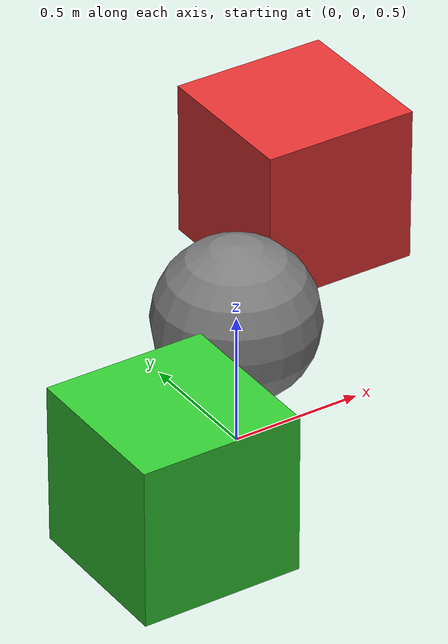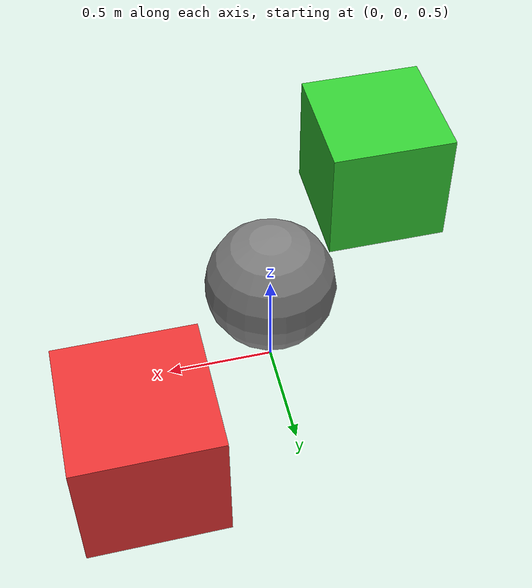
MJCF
<mujoco>
  <option gravity="0 0 -9.81"/>
  <worldbody>
    <body name="object" pos="0 0 1">
      <geom type="sphere" size="0.3" rgba="0.5 0.5 0.5 1"/>
    </body>
    <body name="fragment1" pos="-0.7 -0.7 1">
      <geom type="box" size="0.3 0.3 0.3" density="1.2" rgba="0.2 0.8 0.2 1"/>
      <joint type="free"/>
    </body>
    <body name="fragment2" pos="0.7 0.7 1">
      <geom type="box" size="0.3 0.3 0.3" density="1.2" rgba="0.9 0.2 0.2 1"/>
      <joint type="free"/>
    </body>
  </worldbody>
</mujoco>
